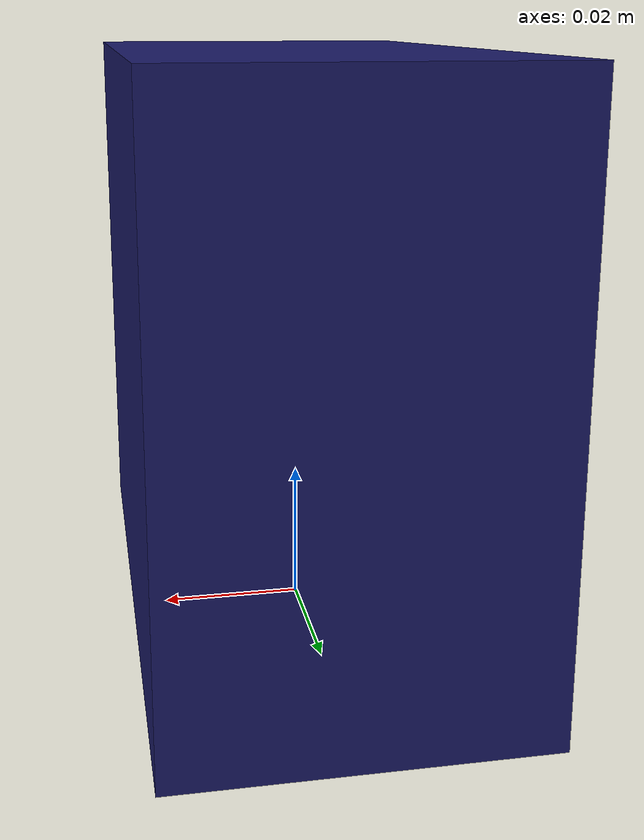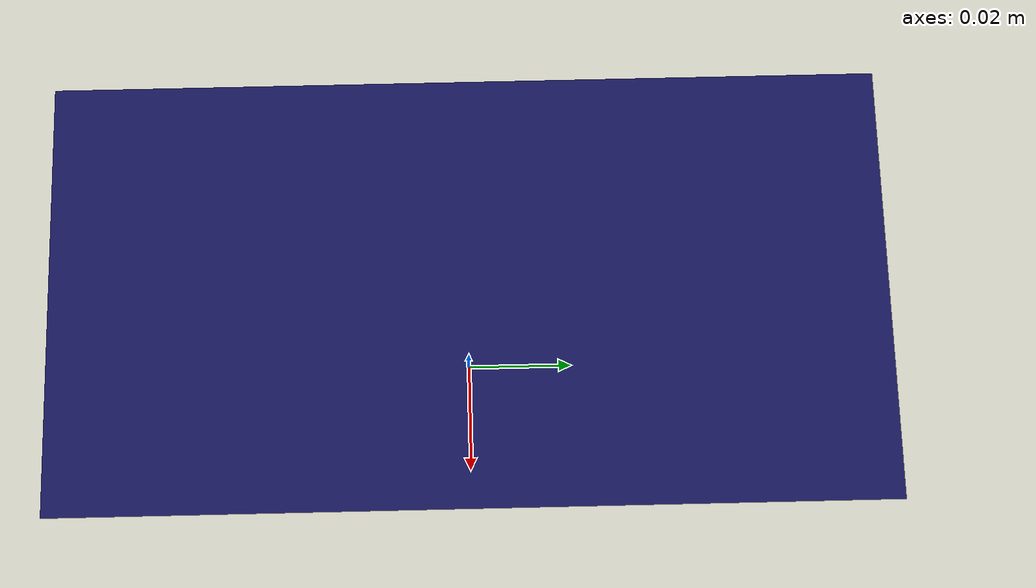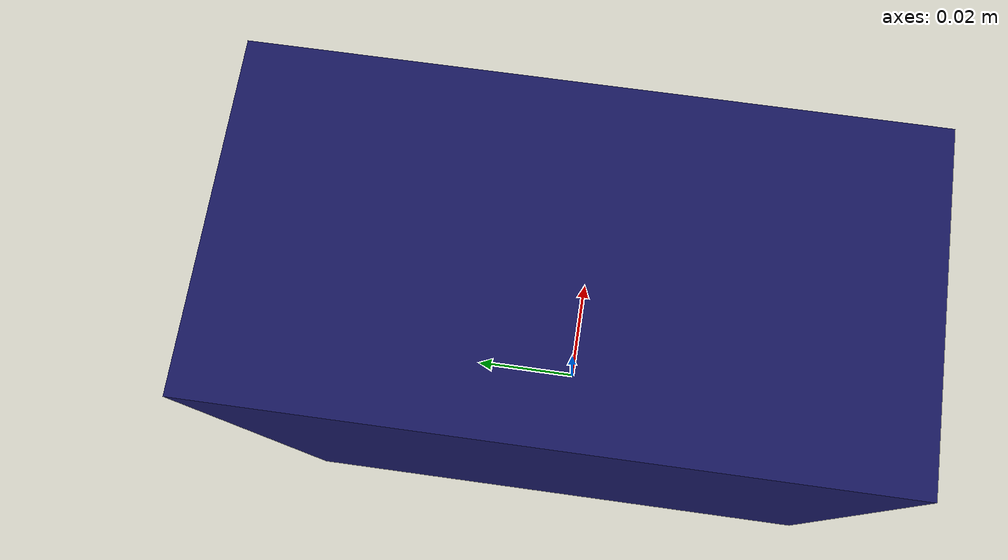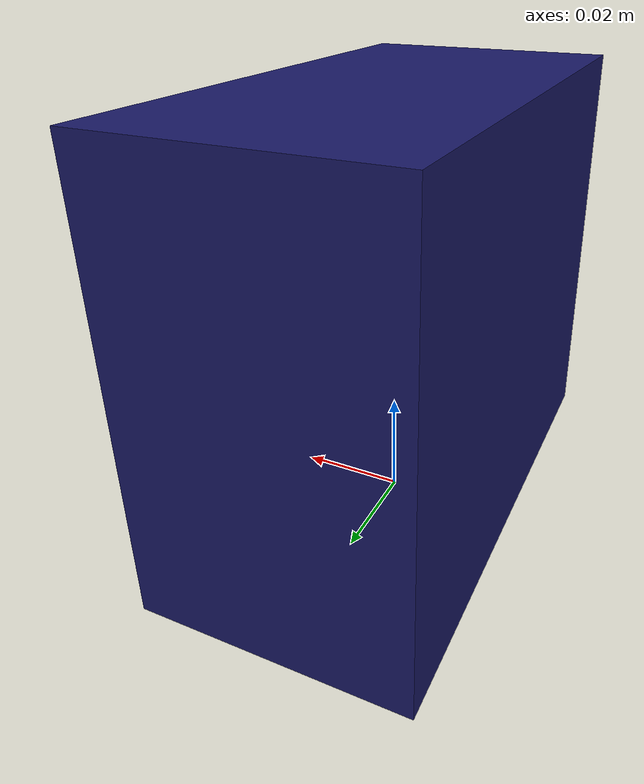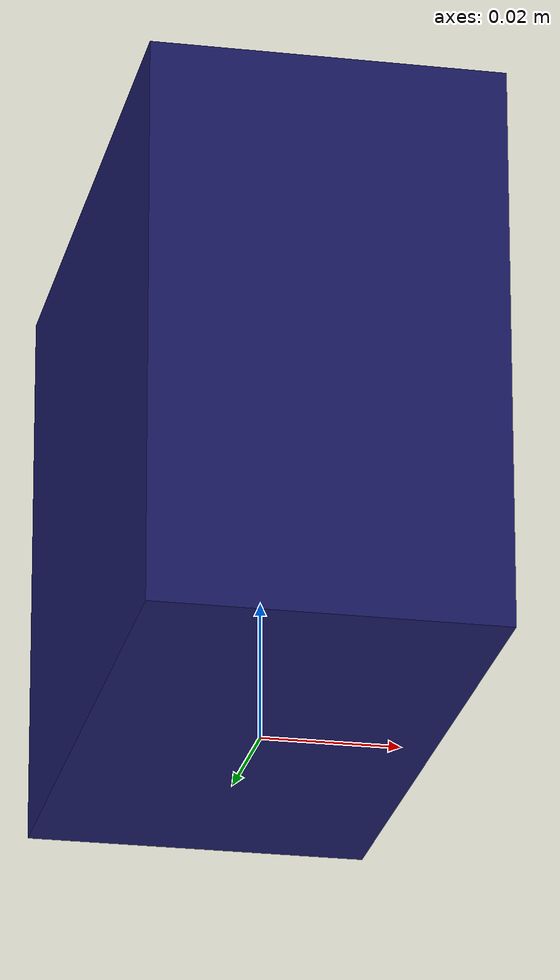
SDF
<?xml version="1.0"?>
<sdf version='1.6'>
<model name="potted_meat_can">
  <link name="base_link_meat">
    <inertial>
      <pose frame=''>0 0 0.041 0 0 0</pose>
      <mass>0.37</mass>
        <inertia>
          <ixx>0.000497434166667</ixx>
          <ixy>0</ixy>
          <ixz>0</ixz>
          <iyy>0.000284406666667</iyy>
          <iyz>0</iyz>
          <izz>0.000367194166667</izz>
        </inertia>
    </inertial>
    <visual name='base_link_meat'>
      <pose frame=''>0 0 0.041 0 0 0</pose>
      <geometry>
        <box>
          <size>0.05 0.097 0.082</size>
        </box>
      </geometry>
      <material>
        <diffuse>0.1 0.1 0.4 1.0</diffuse>
      </material>
    </visual>

    <collision name='potted_meat_can_collision'>
      <pose>0 0 0.041 0 0 0</pose>
      <geometry>
        <box>
          <size>0.049 0.096 0.081</size>
        </box>
      </geometry>
      <material>
        <diffuse>0 1 0 1.0</diffuse>
      </material>
    </collision>

    <collision name='point_collision1'>
      <pose>0.025 0.0485 0 0 0 0</pose>
      <geometry>
        <sphere><radius>1e-7</radius></sphere>
      </geometry>
    </collision>

    <collision name='point_collision2'>
      <pose>0.025 -0.0485 0 0 0 0</pose>
      <geometry>
        <sphere><radius>1e-7</radius></sphere>
      </geometry>
    </collision>

    <collision name='point_collision3'>
      <pose>-0.025 0.0485 0 0 0 0</pose>
      <geometry>
        <sphere><radius>1e-7</radius></sphere>
      </geometry>
    </collision>

    <collision name='point_collision4'>
      <pose>-0.025 -0.0485 0 0 0 0</pose>
      <geometry>
        <sphere><radius>1e-7</radius></sphere>
      </geometry>
    </collision>

    <collision name='point_collision5'>
      <pose>0.025 0.0485 0.082 0 0 0</pose>
      <geometry>
        <sphere><radius>1e-7</radius></sphere>
      </geometry>
    </collision>

    <collision name='point_collision6'>
      <pose>0.025 -0.0485 0.082 0 0 0</pose>
      <geometry>
        <sphere><radius>1e-7</radius></sphere>
      </geometry>
    </collision>

    <collision name='point_collision7'>
      <pose>-0.025 0.0485 0.082 0 0 0</pose>
      <geometry>
        <sphere><radius>1e-7</radius></sphere>
      </geometry>
    </collision>

    <collision name='point_collision8'>
      <pose>-0.025 -0.0485 0.082 0 0 0</pose>
      <geometry>
        <sphere><radius>1e-7</radius></sphere>
      </geometry>
    </collision>

   </link>
</model>
</sdf>
